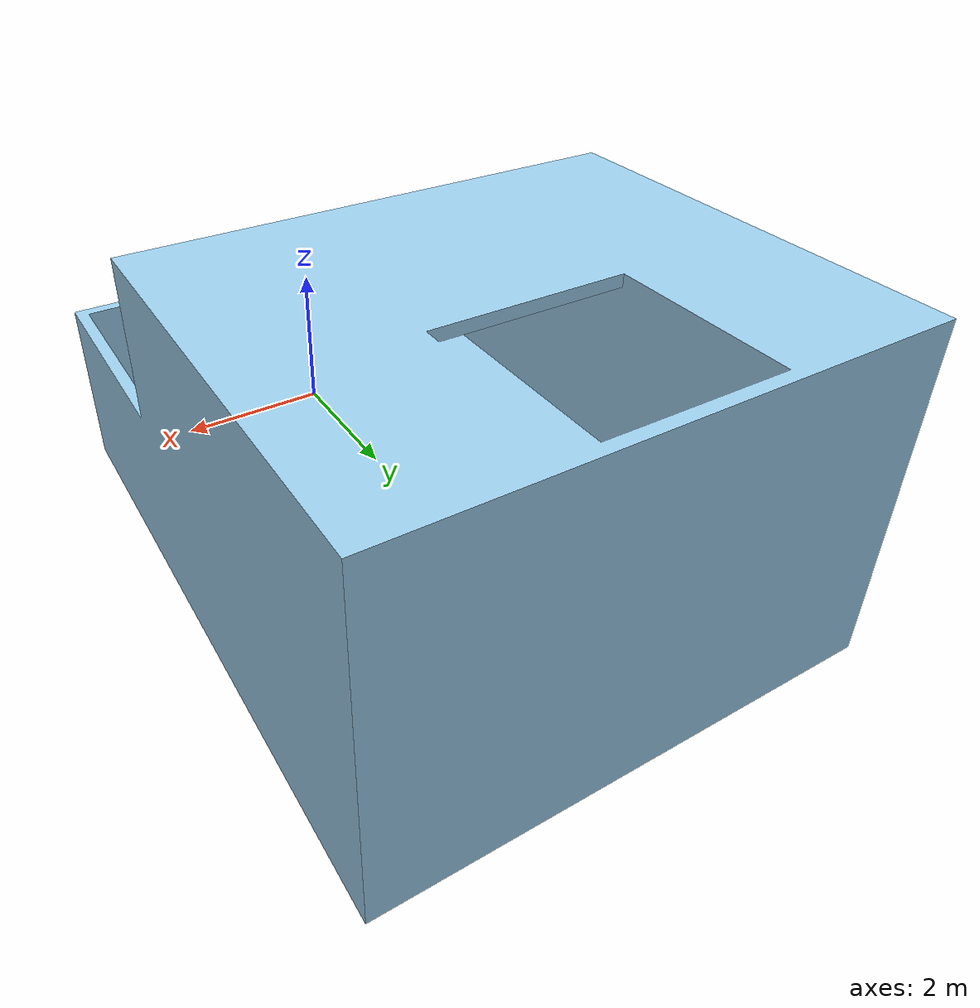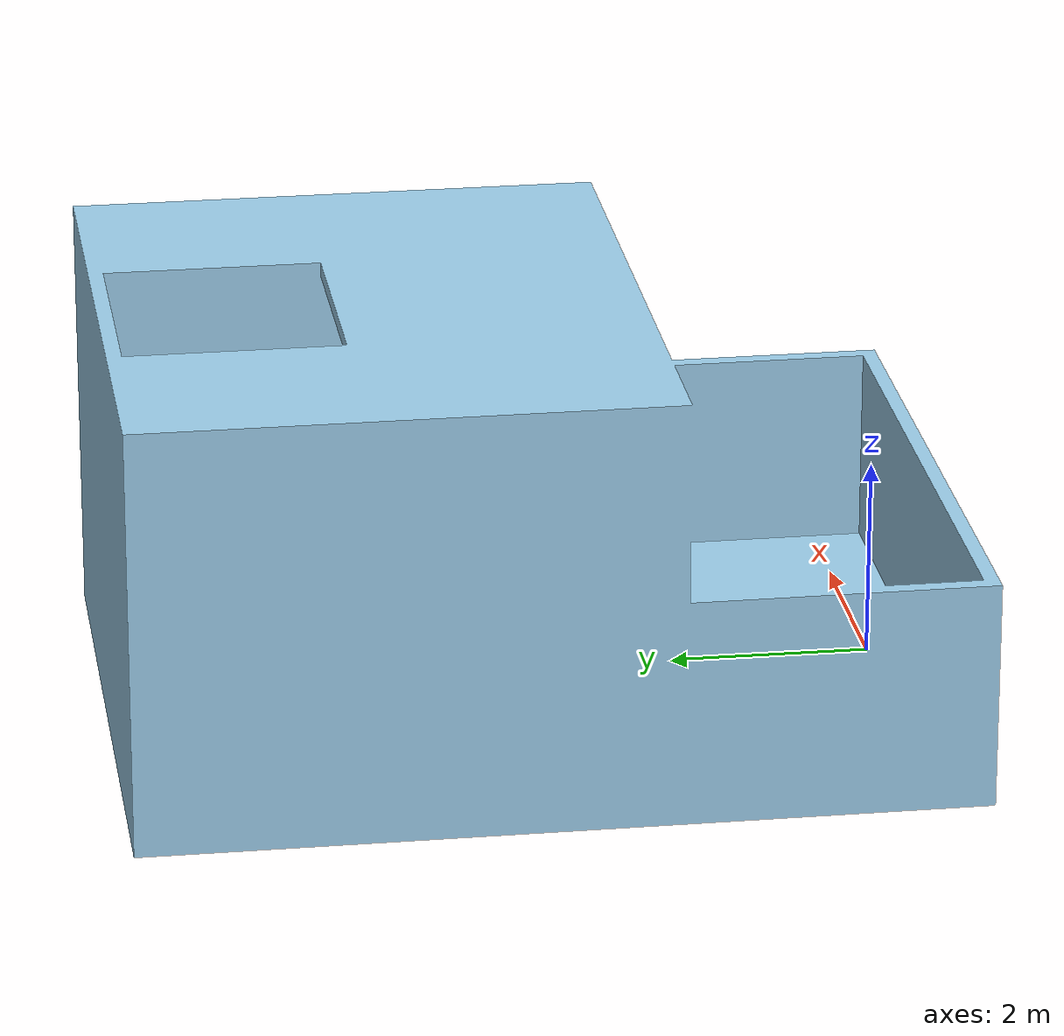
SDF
<?xml version="1.0"?>
<sdf version="1.4">
	<world name="default">
		<include>
			<uri>model://sun</uri>
		</include>
		<model name="mesh">
			<pose>0 0 0 0 0 0</pose>
			<static>true</static>
			<link name="body">
				<visual name="visual">
					<geometry>
						<mesh><uri>model://simple_navigation.dae</uri></mesh>
					</geometry>
				</visual>
				<collision name="collision">
					<geometry>
						<mesh><uri>model://simple_navigation.dae</uri></mesh>
					</geometry>
				</collision>
			</link>
		</model>
	</world>
</sdf>
